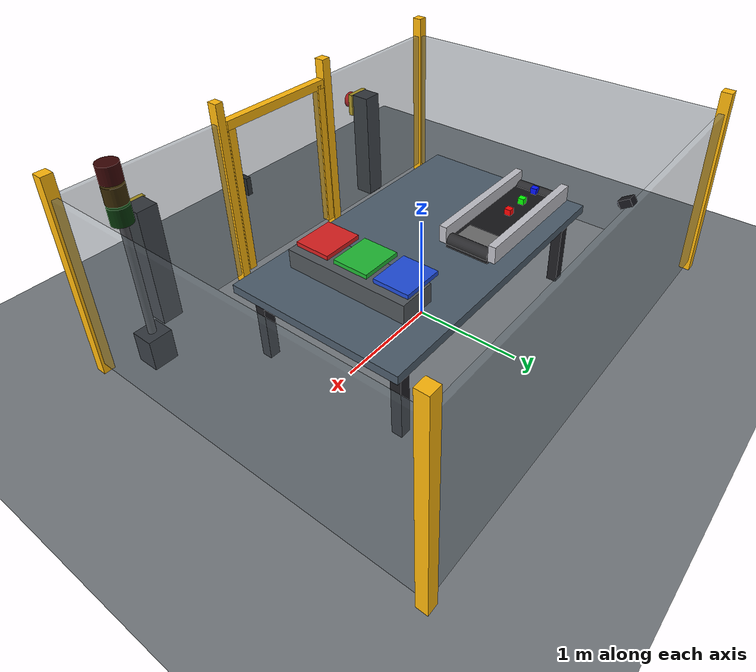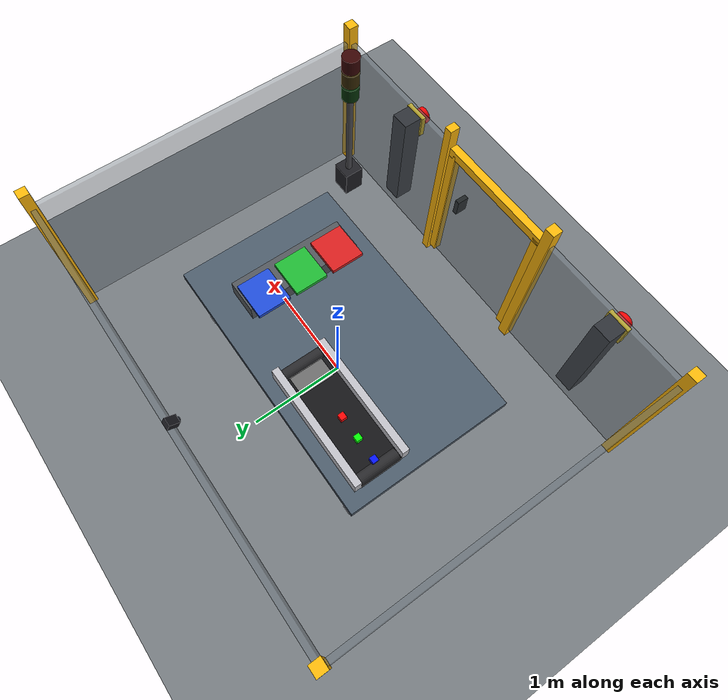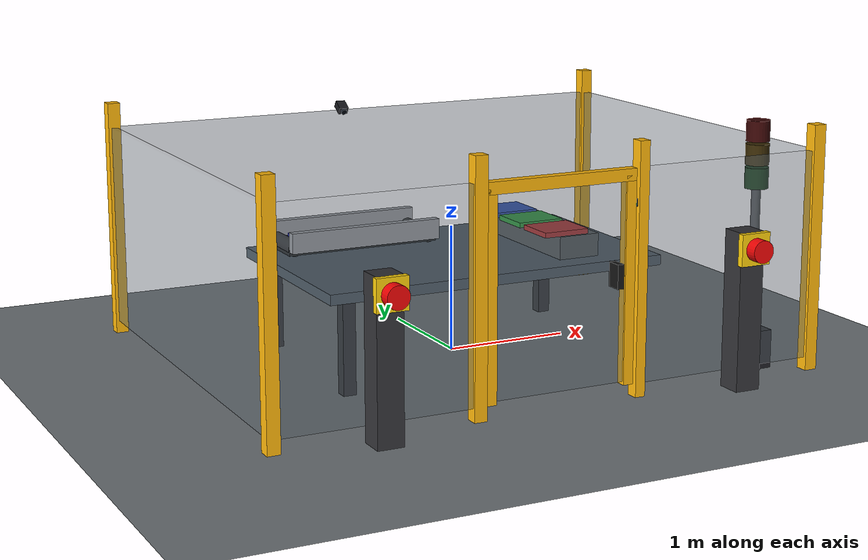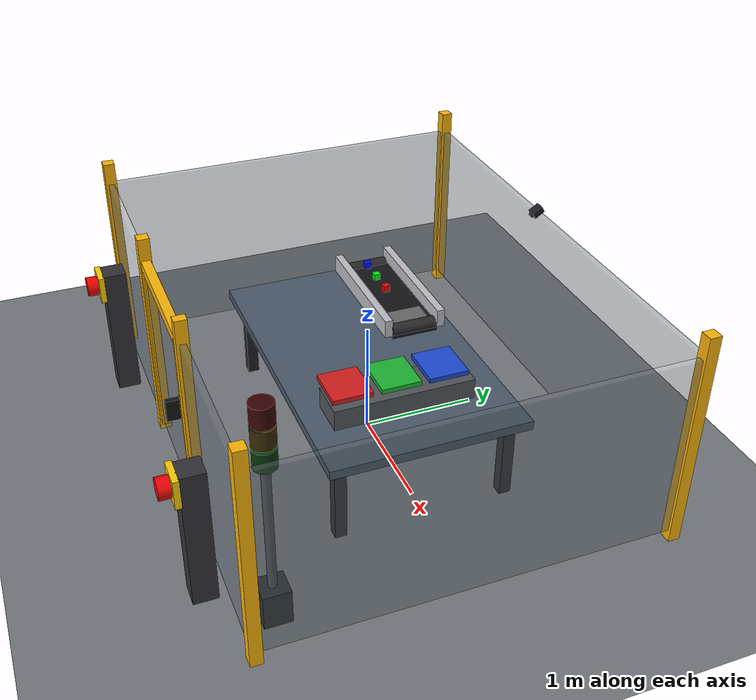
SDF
<?xml version='1.0' encoding='utf-8'?>
<sdf version="1.10">
  <world name="sorting_cell_world">
    <plugin filename="gz-sim-sensors-system" name="gz::sim::systems::Sensors">
      <render_engine>ogre2</render_engine>
    </plugin>
    <gravity>0 0 -9.81</gravity>
    <physics name="default_physics" type="ignored">
      <max_step_size>0.001</max_step_size>
      <real_time_factor>1.0</real_time_factor>
    </physics>
    <plugin filename="gz-sim-physics-system" name="gz::sim::systems::Physics" />
    <plugin filename="gz-sim-user-commands-system" name="gz::sim::systems::UserCommands" />
    <plugin filename="gz-sim-scene-broadcaster-system" name="gz::sim::systems::SceneBroadcaster" />
    <scene>
      <ambient>0.55 0.55 0.55 1</ambient>
      <background>0.72 0.76 0.80 1</background>
      <shadows>false</shadows>
    </scene>
    <light name="sun" type="directional">
      <cast_shadows>false</cast_shadows>
      <pose>0 0 8 0 0 0</pose>
      <diffuse>0.95 0.95 0.95 1</diffuse>
      <specular>0.25 0.25 0.25 1</specular>
      <direction>-0.4 0.2 -0.9</direction>
    </light>
    <model name="ground_plane">
      <static>true</static>
      <link name="ground_link">
        <collision name="ground_collision">
          <geometry>
            <plane>
              <normal>0 0 1</normal>
              <size>20 20</size>
            </plane>
          </geometry>
        </collision>
        <visual name="ground_visual">
          <geometry>
            <plane>
              <normal>0 0 1</normal>
              <size>20 20</size>
            </plane>
          </geometry>
          <material>
            <ambient>0.32 0.34 0.36 1</ambient>
            <diffuse>0.46 0.48 0.50 1</diffuse>
            <specular>0.04 0.04 0.04 1</specular>
          </material>
        </visual>
      </link>
    </model>
    <include>
      <uri>models/work_table</uri>
      <name>work_table</name>
      <pose>0 0 0 0 0 0</pose>
    </include>
    <include>
      <uri>models/conveyor</uri>
      <name>conveyor</name>
      <pose>-0.65 0.45 0.80 0 0 0</pose>
    </include>
    <include>
      <uri>models/sorting_bins</uri>
      <name>sorting_bins</name>
      <pose>0.68 -0.05 0.98 0 0 0</pose>
    </include>
    <include>
      <uri>models/safety_fence</uri>
      <name>safety_fence</name>
      <pose>0 0 0 0 0 0</pose>
    </include>
    <include>
      <uri>models/safety_gate</uri>
      <name>safety_gate</name>
      <pose>0 -1.70 0 0 0 0</pose>
    </include>
    <include>
      <uri>models/emergency_stop</uri>
      <name>emergency_stop</name>
      <pose>0 -1.88 0 0 0 0</pose>
    </include>
    <include>
      <uri>models/stack_light</uri>
      <name>stack_light</name>
      <pose>1.85 -1.45 0 0 0 0</pose>
    </include>
    <include>
      <uri>models/camera_frame</uri>
      <name>camera_frame</name>
      <pose>-0.210000 1.620000 1.700000 0.000000000 0.557830676 -1.570796327</pose>
    </include>
    <model name="red_box">
      <pose>-0.70 0.45 0.94 0 0 0</pose>
      <link name="box_link">
        <inertial>
          <mass>0.12</mass>
          <inertia>
            <ixx>0.000072</ixx>
            <iyy>0.000072</iyy>
            <izz>0.000072</izz>
          </inertia>
        </inertial>
        <visual name="visual">
          <geometry>
            <box>
              <size>0.06 0.06 0.06</size>
            </box>
          </geometry>
          <material>
            <ambient>1 0.02 0.02 1</ambient>
            <diffuse>1 0.02 0.02 1</diffuse>
          </material>
        </visual>
        <collision name="collision">
          <geometry>
            <box>
              <size>0.06 0.06 0.06</size>
            </box>
          </geometry>
          <surface>
            <friction>
              <ode>
                <mu>0.8</mu>
                <mu2>0.8</mu2>
              </ode>
            </friction>
          </surface>
        </collision>
      </link>
    </model>
    <model name="green_box">
      <pose>-0.93 0.45 0.94 0 0 0</pose>
      <link name="box_link">
        <inertial>
          <mass>0.12</mass>
          <inertia>
            <ixx>0.000072</ixx>
            <iyy>0.000072</iyy>
            <izz>0.000072</izz>
          </inertia>
        </inertial>
        <visual name="visual">
          <geometry>
            <box>
              <size>0.06 0.06 0.06</size>
            </box>
          </geometry>
          <material>
            <ambient>0.02 1 0.02 1</ambient>
            <diffuse>0.02 1 0.02 1</diffuse>
          </material>
        </visual>
        <collision name="collision">
          <geometry>
            <box>
              <size>0.06 0.06 0.06</size>
            </box>
          </geometry>
          <surface>
            <friction>
              <ode>
                <mu>0.8</mu>
                <mu2>0.8</mu2>
              </ode>
            </friction>
          </surface>
        </collision>
      </link>
    </model>
    <model name="blue_box">
      <pose>-1.16 0.45 0.94 0 0 0</pose>
      <link name="box_link">
        <inertial>
          <mass>0.12</mass>
          <inertia>
            <ixx>0.000072</ixx>
            <iyy>0.000072</iyy>
            <izz>0.000072</izz>
          </inertia>
        </inertial>
        <visual name="visual">
          <geometry>
            <box>
              <size>0.06 0.06 0.06</size>
            </box>
          </geometry>
          <material>
            <ambient>0.02 0.08 1 1</ambient>
            <diffuse>0.02 0.08 1 1</diffuse>
          </material>
        </visual>
        <collision name="collision">
          <geometry>
            <box>
              <size>0.06 0.06 0.06</size>
            </box>
          </geometry>
          <surface>
            <friction>
              <ode>
                <mu>0.8</mu>
                <mu2>0.8</mu2>
              </ode>
            </friction>
          </surface>
        </collision>
      </link>
    </model>
    <plugin filename="SafetyRuntime" name="sorting_cell::SafetyRuntime">
    </plugin>
    <gui fullscreen="false">
      <plugin filename="SafetyPanel" name="Safety Control">
        <gz-gui>
          <title>Safety Control</title>
          <property type="string" key="state">
            floating
          </property>
          <property type="double" key="width">
            380
          </property>
          <property type="double" key="height">
            450
          </property>
          <property type="double" key="x">
            20
          </property>
          <property type="double" key="y">
            100
          </property>
        </gz-gui>
      </plugin>
    </gui>
  </world>
</sdf>

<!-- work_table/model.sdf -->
<sdf version="1.10">

  <model name="work_table">

    <!-- The table is part of the fixed environment -->
    <static>true</static>

    <link name="table_link">

      <!-- Tabletop                                             -->

      <collision name="tabletop_collision">

        <pose>0 0 0.76 0 0 0</pose>

        <geometry>

          <box>

            <size>2.80 1.70 0.08</size>

          </box>

        </geometry>

      </collision>

      <visual name="tabletop_visual">

        <pose>0 0 0.76 0 0 0</pose>

        <geometry>

          <box>

            <size>2.80 1.70 0.08</size>

          </box>

        </geometry>

        <material>

          <ambient>0.22 0.27 0.32 1</ambient>

          <diffuse>0.30 0.36 0.42 1</diffuse>

          <specular>0.18 0.18 0.18 1</specular>

        </material>

      </visual>

      <!-- Front-left leg                                       -->

      <collision name="front_left_leg_collision">

        <pose>1.22 -0.72 0.36 0 0 0</pose>

        <geometry>

          <box>

            <size>0.10 0.10 0.72</size>

          </box>

        </geometry>

      </collision>

      <visual name="front_left_leg_visual">

        <pose>1.22 -0.72 0.36 0 0 0</pose>

        <geometry>

          <box>

            <size>0.10 0.10 0.72</size>

          </box>

        </geometry>

        <material>

          <ambient>0.07 0.07 0.08 1</ambient>

          <diffuse>0.12 0.12 0.14 1</diffuse>

          <specular>0.20 0.20 0.20 1</specular>

        </material>

      </visual>

      <!-- Front-right leg                                      -->

      <collision name="front_right_leg_collision">

        <pose>1.22 0.72 0.36 0 0 0</pose>

        <geometry>

          <box>

            <size>0.10 0.10 0.72</size>

          </box>

        </geometry>

      </collision>

      <visual name="front_right_leg_visual">

        <pose>1.22 0.72 0.36 0 0 0</pose>

        <geometry>

          <box>

            <size>0.10 0.10 0.72</size>

          </box>

        </geometry>

        <material>

          <ambient>0.07 0.07 0.08 1</ambient>

          <diffuse>0.12 0.12 0.14 1</diffuse>

          <specular>0.20 0.20 0.20 1</specular>

        </material>

      </visual>

      <!-- Rear-left leg                                        -->

      <collision name="rear_left_leg_collision">

        <pose>-1.22 -0.72 0.36 0 0 0</pose>

        <geometry>

          <box>

            <size>0.10 0.10 0.72</size>

          </box>

        </geometry>

      </collision>

      <visual name="rear_left_leg_visual">

        <pose>-1.22 -0.72 0.36 0 0 0</pose>

        <geometry>

          <box>

            <size>0.10 0.10 0.72</size>

          </box>

        </geometry>

        <material>

          <ambient>0.07 0.07 0.08 1</ambient>

          <diffuse>0.12 0.12 0.14 1</diffuse>

          <specular>0.20 0.20 0.20 1</specular>

        </material>

      </visual>

      <!-- Rear-right leg                                       -->

      <collision name="rear_right_leg_collision">

        <pose>-1.22 0.72 0.36 0 0 0</pose>

        <geometry>

          <box>

            <size>0.10 0.10 0.72</size>

          </box>

        </geometry>

      </collision>

      <visual name="rear_right_leg_visual">

        <pose>-1.22 0.72 0.36 0 0 0</pose>

        <geometry>

          <box>

            <size>0.10 0.10 0.72</size>

          </box>

        </geometry>

        <material>

          <ambient>0.07 0.07 0.08 1</ambient>

          <diffuse>0.12 0.12 0.14 1</diffuse>

          <specular>0.20 0.20 0.20 1</specular>

        </material>

      </visual>

    </link>

  </model>

</sdf>

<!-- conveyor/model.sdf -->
<sdf version="1.10">

  <model name="conveyor">

    <static>true</static>

    <!-- Moving contact surface                             -->

    <link name="belt_link">

      <collision name="belt_collision">

        <pose>0 0 0.075 0 0 0</pose>

        <geometry>
          <box>
            <size>1.25 0.42 0.07</size>
          </box>
        </geometry>

        <surface>

          <friction>
            <ode>

              <!-- Across-belt friction -->
              <mu>0.8</mu>

              <!-- Along-belt traction -->
              <mu2>100</mu2>

              <fdir1>0 1 0</fdir1>

            </ode>
          </friction>

          <contact>
            <ode>
              <kp>1000000</kp>
              <kd>100</kd>
            </ode>
          </contact>

        </surface>

      </collision>

      <visual name="belt_visual">

        <pose>0 0 0.075 0 0 0</pose>

        <geometry>
          <box>
            <size>1.25 0.42 0.07</size>
          </box>
        </geometry>

        <material>
          <ambient>0.06 0.06 0.07 1</ambient>
          <diffuse>0.08 0.08 0.09 1</diffuse>
          <specular>0.15 0.15 0.15 1</specular>
        </material>

      </visual>

    </link>

    <!-- Static conveyor frame                              -->

    <link name="frame_link">

      <collision name="left_rail_collision">
        <pose>0 0.245 0.15 0 0 0</pose>
        <geometry>
          <box>
            <size>1.25 0.07 0.16</size>
          </box>
        </geometry>
      </collision>

      <visual name="left_rail_visual">
        <pose>0 0.245 0.15 0 0 0</pose>
        <geometry>
          <box>
            <size>1.25 0.07 0.16</size>
          </box>
        </geometry>
        <material>
          <ambient>0.75 0.75 0.78 1</ambient>
          <diffuse>0.75 0.75 0.78 1</diffuse>
        </material>
      </visual>

      <collision name="right_rail_collision">
        <pose>0 -0.245 0.15 0 0 0</pose>
        <geometry>
          <box>
            <size>1.25 0.07 0.16</size>
          </box>
        </geometry>
      </collision>

      <visual name="right_rail_visual">
        <pose>0 -0.245 0.15 0 0 0</pose>
        <geometry>
          <box>
            <size>1.25 0.07 0.16</size>
          </box>
        </geometry>
        <material>
          <ambient>0.75 0.75 0.78 1</ambient>
          <diffuse>0.75 0.75 0.78 1</diffuse>
        </material>
      </visual>

      <visual name="input_roller_visual">
        <pose>-0.57 0 0.09 1.5708 0 0</pose>
        <geometry>
          <cylinder>
            <radius>0.06</radius>
            <length>0.40</length>
          </cylinder>
        </geometry>
        <material>
          <ambient>0.16 0.16 0.17 1</ambient>
          <diffuse>0.16 0.16 0.17 1</diffuse>
        </material>
      </visual>

      <visual name="output_roller_visual">
        <pose>0.57 0 0.09 1.5708 0 0</pose>
        <geometry>
          <cylinder>
            <radius>0.06</radius>
            <length>0.40</length>
          </cylinder>
        </geometry>
        <material>
          <ambient>0.16 0.16 0.17 1</ambient>
          <diffuse>0.16 0.16 0.17 1</diffuse>
        </material>
      </visual>

      <!-- Green pickup-zone marker -->
      <visual name="pickup_zone_visual">

        <pose>0.44 0 0.115 0 0 0</pose>

        <geometry>
          <box>
            <size>0.24 0.34 0.008</size>
          </box>
        </geometry>

        <material>
          <ambient>0.65 0.65 0.65 0.65</ambient>
          <diffuse>0.65 0.65 0.65 0.65</diffuse>
        </material>

        <transparency>0.28</transparency>

      </visual>

    </link>

    <!-- Gazebo conveyor controller                         -->

    <plugin
      filename="gz-sim-track-controller-system"
      name="gz::sim::systems::TrackController">

      <link>belt_link</link>

      <!-- Belt direction is local +X -->
      <track_orientation>0 0 0</track_orientation>

      <velocity_topic>/conveyor/cmd_vel</velocity_topic>

      <odometry_topic>/conveyor/odometry</odometry_topic>

      <odometry_publish_frequency>20</odometry_publish_frequency>

      <min_velocity>-0.40</min_velocity>
      <max_velocity>0.40</max_velocity>

      <min_acceleration>-0.50</min_acceleration>
      <max_acceleration>0.50</max_acceleration>

    </plugin>

  </model>

</sdf>

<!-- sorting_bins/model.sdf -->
<sdf version="1.10">
  <model name="sorting_bins">
    <static>true</static>
    <link name="red_bin_link">
      <collision name="red_bottom_collision">
        <pose>0 -0.41 0.02 0 0 0</pose>
        <geometry>
          <box>
            <size>0.38 0.34 0.04</size>
          </box>
        </geometry>
      </collision>
      <visual name="red_bottom_visual">
        <pose>0 -0.41 0.02 0 0 0</pose>
        <geometry>
          <box>
            <size>0.38 0.34 0.04</size>
          </box>
        </geometry>
        <material>
          <ambient>0.70 0.06 0.06 1</ambient>
          <diffuse>0.85 0.12 0.12 1</diffuse>
        </material>
      </visual>
    </link>
    <link name="green_bin_link">
      <collision name="green_bottom_collision">
        <pose>0 0 0.02 0 0 0</pose>
        <geometry>
          <box>
            <size>0.38 0.34 0.04</size>
          </box>
        </geometry>
      </collision>
      <visual name="green_bottom_visual">
        <pose>0 0 0.02 0 0 0</pose>
        <geometry>
          <box>
            <size>0.38 0.34 0.04</size>
          </box>
        </geometry>
        <material>
          <ambient>0.06 0.55 0.12 1</ambient>
          <diffuse>0.12 0.72 0.20 1</diffuse>
        </material>
      </visual>
    </link>
    <link name="blue_bin_link">
      <collision name="blue_bottom_collision">
        <pose>0 0.41 0.02 0 0 0</pose>
        <geometry>
          <box>
            <size>0.38 0.34 0.04</size>
          </box>
        </geometry>
      </collision>
      <visual name="blue_bottom_visual">
        <pose>0 0.41 0.02 0 0 0</pose>
        <geometry>
          <box>
            <size>0.38 0.34 0.04</size>
          </box>
        </geometry>
        <material>
          <ambient>0.06 0.18 0.70 1</ambient>
          <diffuse>0.12 0.30 0.85 1</diffuse>
        </material>
      </visual>
    </link>
    <link name="sorting_bins_support">
      <pose>0.10 0 -0.09 0 0 0</pose>
      <visual name="support_visual">
        <geometry>
          <box>
            <size>0.34 1.20 0.18</size>
          </box>
        </geometry>
        <material>
          <ambient>0.28 0.30 0.32 1</ambient>
          <diffuse>0.32 0.34 0.36 1</diffuse>
        </material>
      </visual>
    </link>
  </model>
</sdf>

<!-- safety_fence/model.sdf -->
<sdf version="1.10">

  <model name="safety_fence">

    <static>true</static>

    <link name="fence_link">

      <!-- Rear fence panel -->

      <collision name="rear_panel_collision">
        <pose>0 1.70 0.90 0 0 0</pose>

        <geometry>
          <box>
            <size>4.40 0.05 1.60</size>
          </box>
        </geometry>
      </collision>

      <visual name="rear_panel_visual">
        <pose>0 1.70 0.90 0 0 0</pose>

        <geometry>
          <box>
            <size>4.40 0.05 1.60</size>
          </box>
        </geometry>

        <transparency>0.55</transparency>

        <material>
          <ambient>0.30 0.35 0.38 1</ambient>
          <diffuse>0.40 0.45 0.48 1</diffuse>
        </material>
      </visual>

      <!-- Left fence panel -->

      <collision name="left_panel_collision">
        <pose>-2.20 0 0.90 0 0 0</pose>

        <geometry>
          <box>
            <size>0.05 3.40 1.60</size>
          </box>
        </geometry>
      </collision>

      <visual name="left_panel_visual">
        <pose>-2.20 0 0.90 0 0 0</pose>

        <geometry>
          <box>
            <size>0.05 3.40 1.60</size>
          </box>
        </geometry>

        <transparency>0.55</transparency>

        <material>
          <ambient>0.30 0.35 0.38 1</ambient>
          <diffuse>0.40 0.45 0.48 1</diffuse>
        </material>
      </visual>

      <!-- Right fence panel -->

      <collision name="right_panel_collision">
        <pose>2.20 0 0.90 0 0 0</pose>

        <geometry>
          <box>
            <size>0.05 3.40 1.60</size>
          </box>
        </geometry>
      </collision>

      <visual name="right_panel_visual">
        <pose>2.20 0 0.90 0 0 0</pose>

        <geometry>
          <box>
            <size>0.05 3.40 1.60</size>
          </box>
        </geometry>

        <transparency>0.55</transparency>

        <material>
          <ambient>0.30 0.35 0.38 1</ambient>
          <diffuse>0.40 0.45 0.48 1</diffuse>
        </material>
      </visual>

      <!-- Front-left fence section -->

      <collision name="front_left_panel_collision">
        <pose>-1.45 -1.70 0.90 0 0 0</pose>

        <geometry>
          <box>
            <size>1.50 0.05 1.60</size>
          </box>
        </geometry>
      </collision>

      <visual name="front_left_panel_visual">
        <pose>-1.45 -1.70 0.90 0 0 0</pose>

        <geometry>
          <box>
            <size>1.50 0.05 1.60</size>
          </box>
        </geometry>

        <transparency>0.55</transparency>

        <material>
          <ambient>0.30 0.35 0.38 1</ambient>
          <diffuse>0.40 0.45 0.48 1</diffuse>
        </material>
      </visual>

      <!-- Front-right fence section -->

      <collision name="front_right_panel_collision">
        <pose>1.45 -1.70 0.90 0 0 0</pose>

        <geometry>
          <box>
            <size>1.50 0.05 1.60</size>
          </box>
        </geometry>
      </collision>

      <visual name="front_right_panel_visual">
        <pose>1.45 -1.70 0.90 0 0 0</pose>

        <geometry>
          <box>
            <size>1.50 0.05 1.60</size>
          </box>
        </geometry>

        <transparency>0.55</transparency>

        <material>
          <ambient>0.30 0.35 0.38 1</ambient>
          <diffuse>0.40 0.45 0.48 1</diffuse>
        </material>
      </visual>

      <!-- Yellow structural posts -->

      <collision name="rear_left_post_collision">
        <pose>-2.20 1.70 0.95 0 0 0</pose>
        <geometry>
          <box>
            <size>0.10 0.10 1.90</size>
          </box>
        </geometry>
      </collision>

      <visual name="rear_left_post_visual">
        <pose>-2.20 1.70 0.95 0 0 0</pose>
        <geometry>
          <box>
            <size>0.10 0.10 1.90</size>
          </box>
        </geometry>
        <material>
          <ambient>0.90 0.60 0.02 1</ambient>
          <diffuse>1.00 0.72 0.04 1</diffuse>
        </material>
      </visual>

      <collision name="rear_right_post_collision">
        <pose>2.20 1.70 0.95 0 0 0</pose>
        <geometry>
          <box>
            <size>0.10 0.10 1.90</size>
          </box>
        </geometry>
      </collision>

      <visual name="rear_right_post_visual">
        <pose>2.20 1.70 0.95 0 0 0</pose>
        <geometry>
          <box>
            <size>0.10 0.10 1.90</size>
          </box>
        </geometry>
        <material>
          <ambient>0.90 0.60 0.02 1</ambient>
          <diffuse>1.00 0.72 0.04 1</diffuse>
        </material>
      </visual>

      <collision name="front_left_corner_post_collision">
        <pose>-2.20 -1.70 0.95 0 0 0</pose>
        <geometry>
          <box>
            <size>0.10 0.10 1.90</size>
          </box>
        </geometry>
      </collision>

      <visual name="front_left_corner_post_visual">
        <pose>-2.20 -1.70 0.95 0 0 0</pose>
        <geometry>
          <box>
            <size>0.10 0.10 1.90</size>
          </box>
        </geometry>
        <material>
          <ambient>0.90 0.60 0.02 1</ambient>
          <diffuse>1.00 0.72 0.04 1</diffuse>
        </material>
      </visual>

      <collision name="front_right_corner_post_collision">
        <pose>2.20 -1.70 0.95 0 0 0</pose>
        <geometry>
          <box>
            <size>0.10 0.10 1.90</size>
          </box>
        </geometry>
      </collision>

      <visual name="front_right_corner_post_visual">
        <pose>2.20 -1.70 0.95 0 0 0</pose>
        <geometry>
          <box>
            <size>0.10 0.10 1.90</size>
          </box>
        </geometry>
        <material>
          <ambient>0.90 0.60 0.02 1</ambient>
          <diffuse>1.00 0.72 0.04 1</diffuse>
        </material>
      </visual>

      <collision name="gate_left_post_collision">
        <pose>-0.65 -1.70 0.95 0 0 0</pose>
        <geometry>
          <box>
            <size>0.10 0.10 1.90</size>
          </box>
        </geometry>
      </collision>

      <visual name="gate_left_post_visual">
        <pose>-0.65 -1.70 0.95 0 0 0</pose>
        <geometry>
          <box>
            <size>0.10 0.10 1.90</size>
          </box>
        </geometry>
        <material>
          <ambient>0.90 0.60 0.02 1</ambient>
          <diffuse>1.00 0.72 0.04 1</diffuse>
        </material>
      </visual>

      <collision name="gate_right_post_collision">
        <pose>0.660 -1.70 0.95 0 0 0</pose>
        <geometry>
          <box>
            <size>0.080 0.10 1.90</size>
          </box>
        </geometry>
      </collision>

      <visual name="gate_right_post_visual">
        <pose>0.660 -1.70 0.95 0 0 0</pose>
        <geometry>
          <box>
            <size>0.080 0.10 1.90</size>
          </box>
        </geometry>
        <material>
          <ambient>0.90 0.60 0.02 1</ambient>
          <diffuse>1.00 0.72 0.04 1</diffuse>
        </material>
      </visual>

      <!-- PNP1: upper closed confirmation -->

      <visual name="pnp1_sensor_body_visual">
        <pose>0.615 -1.721 1.45 0 0 0</pose>

        <geometry>
          <box>
            <size>0.010 0.008 0.055</size>
          </box>
        </geometry>

        <material>
          <ambient>0.025 0.035 0.045 1</ambient>
          <diffuse>0.055 0.075 0.095 1</diffuse>
          <specular>0.20 0.22 0.24 1</specular>
        </material>
      </visual>

      <visual name="pnp1_sensing_face_visual">
        <pose>0.6095 -1.721 1.45 0 0 0</pose>

        <geometry>
          <box>
            <size>0.001 0.008 0.040</size>
          </box>
        </geometry>

        <material>
          <ambient>0.03 0.45 0.12 1</ambient>
          <diffuse>0.05 0.85 0.22 1</diffuse>
          <emissive>0.02 0.16 0.05 1</emissive>
        </material>
      </visual>

      <!-- PNP2: upper-middle closed confirmation -->

      <visual name="pnp2_sensor_body_visual">
        <pose>0.615 -1.707 1.10 0 0 0</pose>

        <geometry>
          <box>
            <size>0.010 0.008 0.055</size>
          </box>
        </geometry>

        <material>
          <ambient>0.025 0.035 0.045 1</ambient>
          <diffuse>0.055 0.075 0.095 1</diffuse>
          <specular>0.20 0.22 0.24 1</specular>
        </material>
      </visual>

      <visual name="pnp2_sensing_face_visual">
        <pose>0.6095 -1.707 1.10 0 0 0</pose>

        <geometry>
          <box>
            <size>0.001 0.008 0.040</size>
          </box>
        </geometry>

        <material>
          <ambient>0.03 0.45 0.12 1</ambient>
          <diffuse>0.05 0.85 0.22 1</diffuse>
          <emissive>0.02 0.16 0.05 1</emissive>
        </material>
      </visual>

      <!-- PNP3: lower-middle closed confirmation -->

      <visual name="pnp3_sensor_body_visual">
        <pose>0.615 -1.693 0.70 0 0 0</pose>

        <geometry>
          <box>
            <size>0.010 0.008 0.055</size>
          </box>
        </geometry>

        <material>
          <ambient>0.025 0.035 0.045 1</ambient>
          <diffuse>0.055 0.075 0.095 1</diffuse>
          <specular>0.20 0.22 0.24 1</specular>
        </material>
      </visual>

      <visual name="pnp3_sensing_face_visual">
        <pose>0.6095 -1.693 0.70 0 0 0</pose>

        <geometry>
          <box>
            <size>0.001 0.008 0.040</size>
          </box>
        </geometry>

        <material>
          <ambient>0.03 0.45 0.12 1</ambient>
          <diffuse>0.05 0.85 0.22 1</diffuse>
          <emissive>0.02 0.16 0.05 1</emissive>
        </material>
      </visual>

      <!-- PNP4: lower / track closed confirmation -->

      <visual name="pnp4_sensor_body_visual">
        <pose>0.615 -1.679 0.30 0 0 0</pose>

        <geometry>
          <box>
            <size>0.010 0.008 0.055</size>
          </box>
        </geometry>

        <material>
          <ambient>0.025 0.035 0.045 1</ambient>
          <diffuse>0.055 0.075 0.095 1</diffuse>
          <specular>0.20 0.22 0.24 1</specular>
        </material>
      </visual>

      <visual name="pnp4_sensing_face_visual">
        <pose>0.6095 -1.679 0.30 0 0 0</pose>

        <geometry>
          <box>
            <size>0.001 0.008 0.040</size>
          </box>
        </geometry>

        <material>
          <ambient>0.03 0.45 0.12 1</ambient>
          <diffuse>0.05 0.85 0.22 1</diffuse>
          <emissive>0.02 0.16 0.05 1</emissive>
        </material>
      </visual>

    </link>

  </model>

</sdf>

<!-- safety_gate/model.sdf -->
<sdf version="1.10">

  <model name="safety_gate">

    <static>true</static>

    <link name="gate_link">

      <collision name="gate_panel_collision">
        <pose>0 0 0.88 0 0 0</pose>

        <geometry>
          <box>
            <size>1.20 0.05 1.50</size>
          </box>
        </geometry>
      </collision>

      <visual name="gate_panel_visual">
        <pose>0 0 0.88 0 0 0</pose>

        <geometry>
          <box>
            <size>1.20 0.05 1.50</size>
          </box>
        </geometry>

        <transparency>0.55</transparency>

        <material>
          <ambient>0.30 0.35 0.38 1</ambient>
          <diffuse>0.40 0.45 0.48 1</diffuse>
        </material>
      </visual>

      <collision name="left_frame_collision">
        <pose>-0.56 0 0.88 0 0 0</pose>

        <geometry>
          <box>
            <size>0.08 0.08 1.55</size>
          </box>
        </geometry>
      </collision>

      <visual name="left_frame_visual">
        <pose>-0.56 0 0.88 0 0 0</pose>

        <geometry>
          <box>
            <size>0.08 0.08 1.55</size>
          </box>
        </geometry>

        <material>
          <ambient>0.90 0.60 0.02 1</ambient>
          <diffuse>1.00 0.72 0.04 1</diffuse>
        </material>
      </visual>

      <collision name="right_frame_collision">
        <pose>0.56 0 0.88 0 0 0</pose>

        <geometry>
          <box>
            <size>0.08 0.08 1.55</size>
          </box>
        </geometry>
      </collision>

      <visual name="right_frame_visual">
        <pose>0.56 0 0.88 0 0 0</pose>

        <geometry>
          <box>
            <size>0.08 0.08 1.55</size>
          </box>
        </geometry>

        <material>
          <ambient>0.90 0.60 0.02 1</ambient>
          <diffuse>1.00 0.72 0.04 1</diffuse>
        </material>
      </visual>

      <collision name="top_frame_collision">
        <pose>0 0 1.66 0 0 0</pose>

        <geometry>
          <box>
            <size>1.20 0.08 0.09</size>
          </box>
        </geometry>
      </collision>

      <visual name="top_frame_visual">
        <pose>0 0 1.66 0 0 0</pose>

        <geometry>
          <box>
            <size>1.20 0.08 0.09</size>
          </box>
        </geometry>

        <material>
          <ambient>0.90 0.60 0.02 1</ambient>
          <diffuse>1.00 0.72 0.04 1</diffuse>
        </material>
      </visual>

      <collision name="handle_collision">
        <pose>0.42 -0.08 0.95 0 0 0</pose>

        <geometry>
          <box>
            <size>0.05 0.12 0.18</size>
          </box>
        </geometry>
      </collision>

      <visual name="handle_visual">
        <pose>0.42 -0.08 0.95 0 0 0</pose>

        <geometry>
          <box>
            <size>0.05 0.12 0.18</size>
          </box>
        </geometry>

        <material>
          <ambient>0.03 0.03 0.03 1</ambient>
          <diffuse>0.08 0.08 0.08 1</diffuse>
        </material>
      </visual>

      <visual name="pnp1_target_visual">
        <pose>0.602 -0.021 1.45 0 0 0</pose>

        <geometry>
          <box>
            <size>0.004 0.008 0.040</size>
          </box>
        </geometry>

        <material>
          <ambient>0.48 0.50 0.53 1</ambient>
          <diffuse>0.78 0.81 0.84 1</diffuse>
          <specular>0.90 0.90 0.90 1</specular>
        </material>
      </visual>

      <visual name="pnp2_target_visual">
        <pose>0.602 -0.007 1.10 0 0 0</pose>

        <geometry>
          <box>
            <size>0.004 0.008 0.040</size>
          </box>
        </geometry>

        <material>
          <ambient>0.48 0.50 0.53 1</ambient>
          <diffuse>0.78 0.81 0.84 1</diffuse>
          <specular>0.90 0.90 0.90 1</specular>
        </material>
      </visual>

      <visual name="pnp3_target_visual">
        <pose>0.602 0.007 0.70 0 0 0</pose>

        <geometry>
          <box>
            <size>0.004 0.008 0.040</size>
          </box>
        </geometry>

        <material>
          <ambient>0.48 0.50 0.53 1</ambient>
          <diffuse>0.78 0.81 0.84 1</diffuse>
          <specular>0.90 0.90 0.90 1</specular>
        </material>
      </visual>

      <visual name="pnp4_target_visual">
        <pose>0.602 0.021 0.30 0 0 0</pose>

        <geometry>
          <box>
            <size>0.004 0.008 0.040</size>
          </box>
        </geometry>

        <material>
          <ambient>0.48 0.50 0.53 1</ambient>
          <diffuse>0.78 0.81 0.84 1</diffuse>
          <specular>0.90 0.90 0.90 1</specular>
        </material>
      </visual>

    </link>

  </model>

</sdf>

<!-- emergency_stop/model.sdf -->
<sdf version="1.10">

  <model name="emergency_stop">

    <static>true</static>

    <link name="emergency_stop_link">

      <!-- Left pedestal -->

      <collision name="left_pedestal_collision">
        <pose>-1.45 0 0.60 0 0 0</pose>

        <geometry>
          <box>
            <size>0.20 0.20 1.20</size>
          </box>
        </geometry>
      </collision>

      <visual name="left_pedestal_visual">
        <pose>-1.45 0 0.60 0 0 0</pose>

        <geometry>
          <box>
            <size>0.20 0.20 1.20</size>
          </box>
        </geometry>

        <material>
          <ambient>0.12 0.12 0.14 1</ambient>
          <diffuse>0.20 0.20 0.22 1</diffuse>
        </material>
      </visual>

      <visual name="left_yellow_plate_visual">
        <pose>-1.45 -0.12 1.08 0 0 0</pose>

        <geometry>
          <box>
            <size>0.24 0.05 0.24</size>
          </box>
        </geometry>

        <material>
          <ambient>0.90 0.70 0.02 1</ambient>
          <diffuse>1.00 0.82 0.04 1</diffuse>
        </material>
      </visual>

      <collision name="left_button_collision">
        <pose>-1.45 -0.19 1.08 1.5708 0 0</pose>

        <geometry>
          <cylinder>
            <radius>0.085</radius>
            <length>0.10</length>
          </cylinder>
        </geometry>
      </collision>

      <visual name="left_button_visual">
        <pose>-1.45 -0.19 1.08 1.5708 0 0</pose>

        <geometry>
          <cylinder>
            <radius>0.085</radius>
            <length>0.10</length>
          </cylinder>
        </geometry>

        <material>
          <ambient>0.75 0.01 0.01 1</ambient>
          <diffuse>0.95 0.02 0.02 1</diffuse>
        </material>
      </visual>

      <!-- Right pedestal -->

      <collision name="right_pedestal_collision">
        <pose>1.45 0 0.60 0 0 0</pose>

        <geometry>
          <box>
            <size>0.20 0.20 1.20</size>
          </box>
        </geometry>
      </collision>

      <visual name="right_pedestal_visual">
        <pose>1.45 0 0.60 0 0 0</pose>

        <geometry>
          <box>
            <size>0.20 0.20 1.20</size>
          </box>
        </geometry>

        <material>
          <ambient>0.12 0.12 0.14 1</ambient>
          <diffuse>0.20 0.20 0.22 1</diffuse>
        </material>
      </visual>

      <visual name="right_yellow_plate_visual">
        <pose>1.45 -0.12 1.08 0 0 0</pose>

        <geometry>
          <box>
            <size>0.24 0.05 0.24</size>
          </box>
        </geometry>

        <material>
          <ambient>0.90 0.70 0.02 1</ambient>
          <diffuse>1.00 0.82 0.04 1</diffuse>
        </material>
      </visual>

      <collision name="right_button_collision">
        <pose>1.45 -0.19 1.08 1.5708 0 0</pose>

        <geometry>
          <cylinder>
            <radius>0.085</radius>
            <length>0.10</length>
          </cylinder>
        </geometry>
      </collision>

      <visual name="right_button_visual">
        <pose>1.45 -0.19 1.08 1.5708 0 0</pose>

        <geometry>
          <cylinder>
            <radius>0.085</radius>
            <length>0.10</length>
          </cylinder>
        </geometry>

        <material>
          <ambient>0.75 0.01 0.01 1</ambient>
          <diffuse>0.95 0.02 0.02 1</diffuse>
        </material>
      </visual>

    </link>

  </model>

</sdf>

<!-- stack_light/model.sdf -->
<sdf version="1.10">

  <model name="stack_light">

    <static>true</static>

    <link name="stack_light_link">

      <collision name="base_collision">
        <pose>0 0 0.15 0 0 0</pose>

        <geometry>
          <box>
            <size>0.22 0.22 0.30</size>
          </box>
        </geometry>
      </collision>

      <visual name="base_visual">
        <pose>0 0 0.15 0 0 0</pose>

        <geometry>
          <box>
            <size>0.22 0.22 0.30</size>
          </box>
        </geometry>

        <material>
          <ambient>0.06 0.06 0.07 1</ambient>
          <diffuse>0.12 0.12 0.14 1</diffuse>
        </material>
      </visual>

      <collision name="pole_collision">
        <pose>0 0 0.85 0 0 0</pose>

        <geometry>
          <cylinder>
            <radius>0.035</radius>
            <length>1.15</length>
          </cylinder>
        </geometry>
      </collision>

      <visual name="pole_visual">
        <pose>0 0 0.85 0 0 0</pose>

        <geometry>
          <cylinder>
            <radius>0.035</radius>
            <length>1.15</length>
          </cylinder>
        </geometry>

        <material>
          <ambient>0.20 0.20 0.22 1</ambient>
          <diffuse>0.30 0.30 0.32 1</diffuse>
        </material>
      </visual>

      <visual name="green_light_visual">
        <pose>0 0 1.48 0 0 0</pose>

        <geometry>
          <cylinder>
            <radius>0.09</radius>
            <length>0.16</length>
          </cylinder>
        </geometry>

        <material>
          <ambient>0.01 0.12 0.02 1</ambient>
          <diffuse>0.02 0.20 0.03 1</diffuse>
          <emissive>0 0 0 1</emissive>
        </material>
      </visual>

      <visual name="yellow_light_visual">
        <pose>0 0 1.66 0 0 0</pose>

        <geometry>
          <cylinder>
            <radius>0.09</radius>
            <length>0.16</length>
          </cylinder>
        </geometry>

        <material>
          <ambient>0.14 0.10 0.01 1</ambient>
          <diffuse>0.22 0.16 0.02 1</diffuse>
          <emissive>0 0 0 1</emissive>
        </material>
      </visual>

      <visual name="red_light_visual">
        <pose>0 0 1.84 0 0 0</pose>

        <geometry>
          <cylinder>
            <radius>0.09</radius>
            <length>0.16</length>
          </cylinder>
        </geometry>

        <material>
          <ambient>0.14 0.01 0.01 1</ambient>
          <diffuse>0.22 0.02 0.02 1</diffuse>
          <emissive>0 0 0 1</emissive>
        </material>
      </visual>

    </link>

  </model>

</sdf>

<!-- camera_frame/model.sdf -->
<sdf version="1.10">
  <model name="camera_frame">
    <static>true</static>
    <link name="camera_link">
      <visual name="camera_body_visual">
        <pose>-0.055 0 0 0 0 0</pose>
        <geometry>
          <box>
            <size>0.10 0.08 0.06</size>
          </box>
        </geometry>
        <material>
          <ambient>0.08 0.08 0.09 1</ambient>
          <diffuse>0.10 0.10 0.12 1</diffuse>
        </material>
      </visual>
      <visual name="camera_lens_visual">
        <pose>0 0 0 0 1.5708 0</pose>
        <geometry>
          <cylinder>
            <radius>0.025</radius>
            <length>0.025</length>
          </cylinder>
        </geometry>
        <material>
          <ambient>0.02 0.04 0.08 1</ambient>
          <diffuse>0.02 0.04 0.08 1</diffuse>
        </material>
      </visual>
      <sensor name="overhead_camera" type="camera">
        <always_on>true</always_on>
        <update_rate>15</update_rate>
        <visualize>true</visualize>
        <topic>/sorting_camera/image</topic>
        <camera>
          <horizontal_fov>0.286711161</horizontal_fov>
          <image>
            <width>640</width>
            <height>480</height>
            <format>R8G8B8</format>
          </image>
          <clip>
            <near>0.05</near>
            <far>5.0</far>
          </clip>
        </camera>
      </sensor>
    </link>
  </model>
</sdf>
